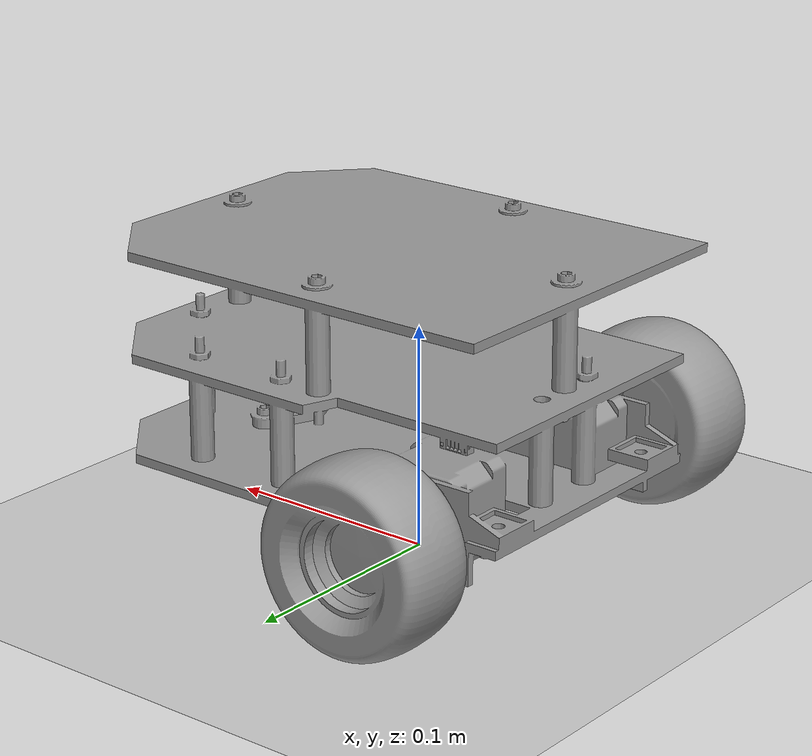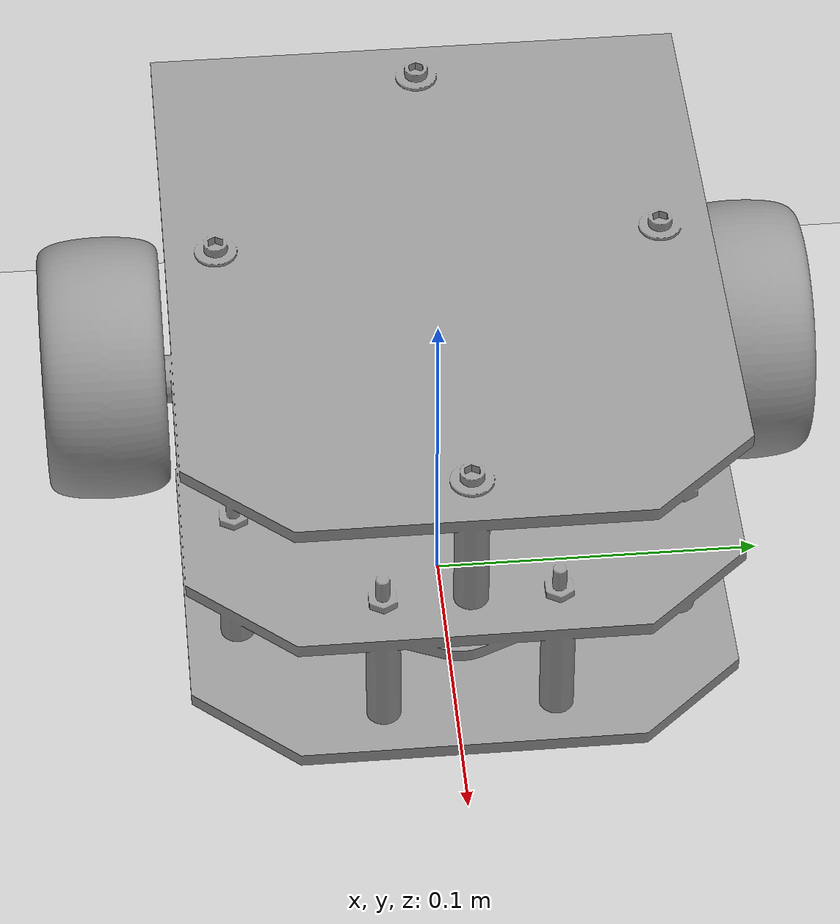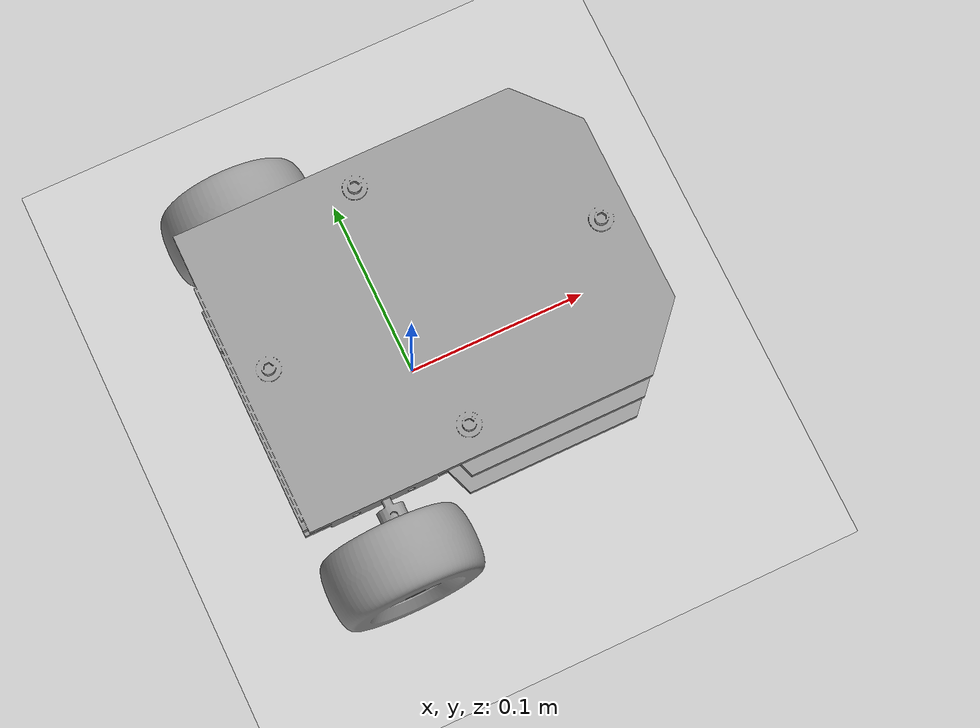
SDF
<?xml version="1.0" ?>
<sdf version="1.7">
    <world name="diff_drive_world">
        <physics name="1ms" type="ignored">
            <max_step_size>0.001</max_step_size>
            <real_time_factor>1.0</real_time_factor>
        </physics>
        <plugin filename="libignition-gazebo-physics-system.so" name="ignition::gazebo::systems::Physics">
        </plugin>
        <plugin filename="libignition-gazebo-user-commands-system.so" name="ignition::gazebo::systems::UserCommands">
        </plugin>
        <plugin filename="libignition-gazebo-scene-broadcaster-system.so" name="ignition::gazebo::systems::SceneBroadcaster">
        </plugin>

        <gui fullscreen="1">
            <!-- 3D scene -->
            <plugin filename="GzScene3D" name="3D View">
                <ignition-gui>
                    <title>3D View</title>
                    <property type="bool" key="showTitleBar">false</property>
                    <property type="string" key="state">docked</property>
                </ignition-gui>

                <engine>ogre2</engine>
                <scene>scene</scene>
                <ambient_light>0.4 0.4 0.4</ambient_light>
                <background_color>0.8 0.8 0.8</background_color>
                <camera_pose>-1 -2 2 0 0.8 0.8</camera_pose> <!-- it took me so long to find out how this works, since its not in the spec -->

            </plugin>

            <!-- World control -->
            <plugin filename="WorldControl" name="World control">
                <ignition-gui>
                    <title>World control</title>
                    <property type="bool" key="showTitleBar">false</property>
                    <property type="bool" key="resizable">false</property>
                    <property type="double" key="height">72</property>
                    <property type="double" key="width">121</property>
                    <property type="double" key="z">1</property>

                    <property type="string" key="state">floating</property>
                    <anchors target="3D View">
                        <line own="left" target="left"/>
                        <line own="bottom" target="bottom"/>
                    </anchors>
                </ignition-gui>

                <play_pause>true</play_pause>
                <step>true</step>
                <start_paused>true</start_paused>
                <service>/world/diff_drive_world/control</service>
                <stats_topic>/world/diff_drive_world/stats</stats_topic>
            </plugin>

            <!-- World statistics -->
            <plugin filename="WorldStats" name="World stats">
                <ignition-gui>
                    <title>World stats</title>
                    <property type="bool" key="showTitleBar">false</property>
                    <property type="bool" key="resizable">false</property>
                    <property type="double" key="height">110</property>
                    <property type="double" key="width">290</property>
                    <property type="double" key="z">1</property>

                    <property type="string" key="state">floating</property>
                    <anchors target="3D View">
                        <line own="right" target="right"/>
                        <line own="bottom" target="bottom"/>
                    </anchors>
                </ignition-gui>

                <sim_time>true</sim_time>
                <real_time>true</real_time>
                <real_time_factor>true</real_time_factor>
                <iterations>true</iterations>
                <topic>/world/diff_drive_world/stats</topic>
            </plugin>

            <!-- Entity tree -->
            <plugin filename="EntityTree" name="Entity tree">
            </plugin>

            <!-- Camera does not work as of now! (IGN Gazebo)
                    see: https://github.com/ignitionrobotics/ign-gazebo/issues/421
             -->
            <camera name="user_camera">
                <pose>0 0 0 0 0 0</pose>
            </camera>

        </gui>

        <light type="directional" name="sun">
            <cast_shadows>true</cast_shadows>
            <pose>0 0 10 0 0 0</pose>
            <diffuse>0.8 0.8 0.8 1</diffuse>
            <specular>0.2 0.2 0.2 1</specular>
            <attenuation>
                <range>1000</range>
                <constant>0.9</constant>
                <linear>0.01</linear>
                <quadratic>0.001</quadratic>
            </attenuation>
            <direction>-0.5 0.1 -0.9</direction>
        </light>

        <model name="ground_plane">
            <static>true</static>
            <link name="link">
                <collision name="collision">
                    <geometry>
                        <plane>
                            <normal>0 0 1</normal>
                        </plane>
                    </geometry>
                </collision>
                <visual name="visual">
                    <geometry>
                        <plane>
                            <normal>0 0 1</normal>
                            <size>1 1 1</size>
                        </plane>
                    </geometry>
                    <material>
                        <ambient>0.8 0.8 0.8 1</ambient>
                        <diffuse>0.8 0.8 0.8 1</diffuse>
                        <specular>0.8 0.8 0.8 1</specular>
                    </material>
                </visual>
            </link>
        </model>

        <model name="diff-drive" canonical_link='chassis'>
            <link name="chassis">
                <!--height placement is wheel radius MINUS height to stepper Axis Center (from stl origin)-->
                <pose>0 0 0.0408 1.570796 0 1.570796</pose>
                <inertial>                    <!--inertial properties of the link mass, inertia matix-->
                    <mass>1.14395</mass>
                    <inertia>
                        <ixx>0.095329</ixx>
                        <ixy>0</ixy>
                        <ixz>0</ixz>
                        <iyy>0.381317</iyy>
                        <iyz>0</iyz>
                        <izz>0.476646</izz>
                    </inertia>
                </inertial>
                <visual name='visual'>
                    <geometry>
                        <mesh>
                            <uri>mesh/v002/diff-drive_base.stl</uri>
                            <scale>0.001 0.001 0.001</scale>
                        </mesh>
                    </geometry>
                    <!--let's add color to our link-->
                    <material>
                        <ambient>0.6 0.6 0.6 1</ambient>
                        <diffuse>0.6 0.6 0.6 1</diffuse>
                        <specular>0.6 0.6 0.6 1</specular>
                    </material>
                </visual>
                <collision name='collision'>
                    <geometry>
                        <mesh>
                            <uri>mesh/v002/diff-drive_base.stl</uri>
                            <scale>0.001 0.001 0.001</scale>
                        </mesh>
                    </geometry>
                </collision>
            </link>
            <link name='left_wheel'>
                <!--NOTE: width of the chassis is 160mm, width of wheel is approx. 37.5mm this offet needs to be at least 98.5mm-->
                <!--NOTE: the stepper Axis Center is at a height distance of 23.5 from the bottom base plate side-->
                <!--NOTE: the stepper Axis Center is at a width distance of YET TO BE DETERMINED from stl origin-->
                <pose relative_to="chassis">0.10 0.004 -0.052 0 0 1.570796</pose>
                <inertial>
                    <mass>1</mass>
                    <inertia>
                        <ixx>0.043333</ixx>
                        <ixy>0</ixy>
                        <ixz>0</ixz>
                        <iyy>0.043333</iyy>
                        <iyz>0</iyz>
                        <izz>0.08</izz>
                    </inertia>
                </inertial>
                <visual name='visual'>
                    <geometry>
                        <mesh>
                            <uri>
                                mesh/v001/wheel.stl
                            </uri>
                            <scale>0.001 0.001 0.001</scale>
                        </mesh>
                    </geometry>
                    <material>
                        <ambient>0.6 0.6 0.6 1</ambient>
                        <diffuse>0.6 0.6 0.6 1</diffuse>
                        <specular>0.6 0.6 0.6 1</specular>
                    </material>
                </visual>
                <collision name='collision'>
                    <geometry>
                        <mesh>
                            <uri>
                                mesh/v001/wheel.stl
                            </uri>
                            <scale>0.001 0.001 0.001</scale>
                        </mesh>
                    </geometry>
                </collision>
            </link>
            <!--The same as left wheel but with different position-->
            <link name='right_wheel'>
                <pose relative_to="chassis">-0.1 0.004 -0.052 0 0 -1.5707</pose>                <!--angles are in radian-->
                <inertial>
                    <mass>1</mass>
                    <inertia>
                        <ixx>0.043333</ixx>
                        <ixy>0</ixy>
                        <ixz>0</ixz>
                        <iyy>0.043333</iyy>
                        <iyz>0</iyz>
                        <izz>0.08</izz>
                    </inertia>
                </inertial>
                <visual name='visual'>
                    <geometry>
                        <mesh>
                            <uri>
                                mesh/v001/wheel.stl
                            </uri>
                            <scale>0.001 0.001 0.001</scale>
                        </mesh>
                    </geometry>
                    <material>
                        <ambient>0.6 0.6 0.6 1</ambient>
                        <diffuse>0.6 0.6 0.6 1</diffuse>
                        <specular>0.6 0.6 0.6 1</specular>
                    </material>
                </visual>
                <collision name='collision'>
                    <geometry>
                        <mesh>
                            <uri>
                                mesh/v001/wheel.stl
                            </uri>
                            <scale>0.001 0.001 0.001</scale>
                        </mesh>
                    </geometry>
                </collision>
            </link>
            <!-- frame tag allows for a new reference frame for an entity an entitiys' frame needs to be linked to the custom created frame -->
            <frame name="caster_frame" attached_to='chassis'>
                <pose>0 -0.025 0.07 0 0 0</pose>
            </frame>
            <!--caster wheel-->
            <link name='caster'>
                <pose relative_to='caster_frame'/>
                <inertial>
                    <mass>1</mass>
                    <inertia>
                        <ixx>0.016</ixx>
                        <ixy>0</ixy>
                        <ixz>0</ixz>
                        <iyy>0.016</iyy>
                        <iyz>0</iyz>
                        <izz>0.016</izz>
                    </inertia>
                </inertial>
                <visual name='visual'>
                    <geometry>
                        <sphere>
                            <radius>0.011</radius>
                        </sphere>
                    </geometry>
                    <material>
                        <ambient>0.0 1 0.0 1</ambient>
                        <diffuse>0.0 1 0.0 1 1</diffuse>
                        <specular>0.0 1 0.0 1</specular>
                    </material>
                </visual>
                <collision name='collision'>
                    <geometry>
                        <sphere>
                            <radius>0.011</radius>
                        </sphere>
                    </geometry>
                </collision>
            </link>
            <joint name='left_wheel_joint' type='revolute'>
                <pose relative_to='left_wheel'/>
                <parent>chassis</parent>
                <child>left_wheel</child>
                <axis>
                    <xyz expressed_in='__model__'>0 1 0</xyz>                    <!--can be defined as any frame or even arbitrary frames-->
                    <limit>
                        <lower>-1.79769e+308</lower>                        <!--negative infinity-->
                        <upper>1.79769e+308</upper>                        <!--positive infinity-->
                    </limit>
                </axis>
            </joint>
            <joint name='right_wheel_joint' type='revolute'>
                <pose relative_to='right_wheel'/>
                <parent>chassis</parent>
                <child>right_wheel</child>
                <axis>
                    <xyz expressed_in='__model__'>0 1 0</xyz>
                    <limit>
                        <lower>-1.79769e+308</lower>                        <!--negative infinity-->
                        <upper>1.79769e+308</upper>                        <!--positive infinity-->
                    </limit>
                </axis>
            </joint>
            <joint name='caster_wheel' type='ball'>
                <parent>chassis</parent>
                <child>caster</child>
            </joint>
            <!-- plugin information from: https://ignitionrobotics.org/docs/citadel/moving_robot -->
            <plugin filename="libignition-gazebo-diff-drive-system.so" name="ignition::gazebo::systems::DiffDrive">
                <left_joint>left_wheel_joint</left_joint>
                <right_joint>right_wheel_joint</right_joint>
                <wheel_separation>0.2</wheel_separation>
                <wheel_radius>0.0408</wheel_radius>
                <odom_publish_frequency>1</odom_publish_frequency>
                <topic>/diff_drive/cmd_vel</topic>
            </plugin>
        </model>
    </world>
</sdf>
